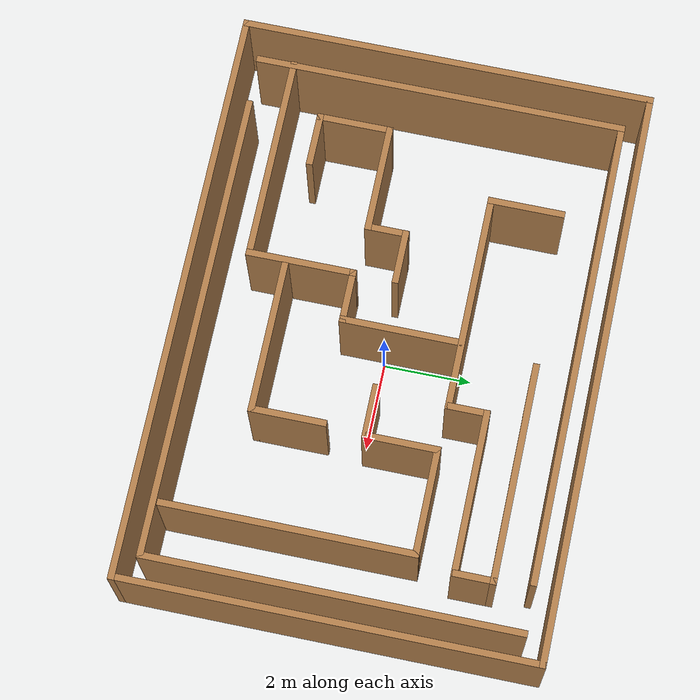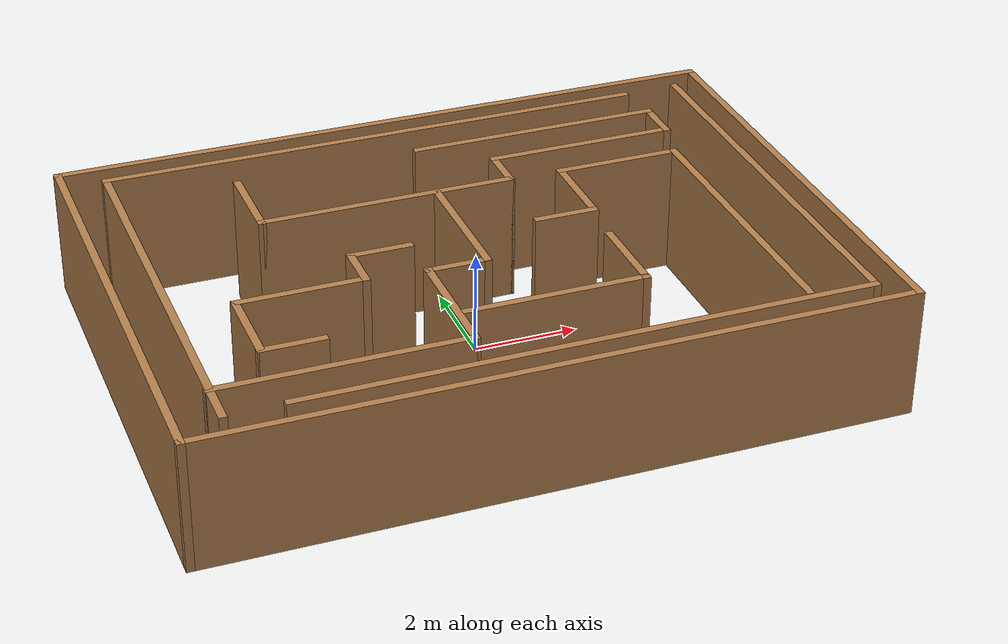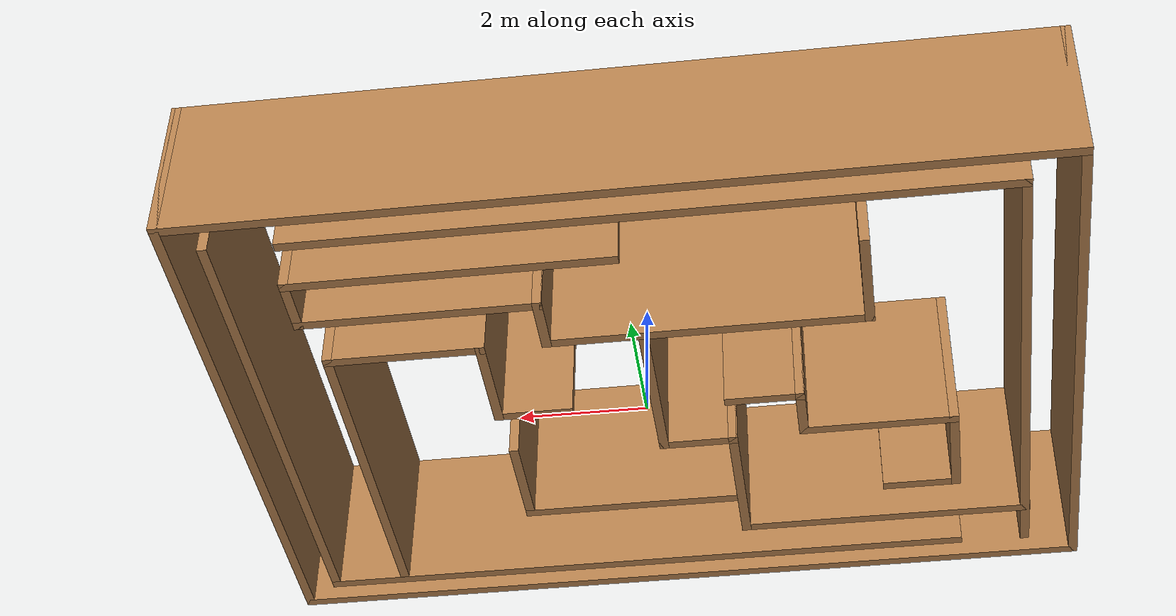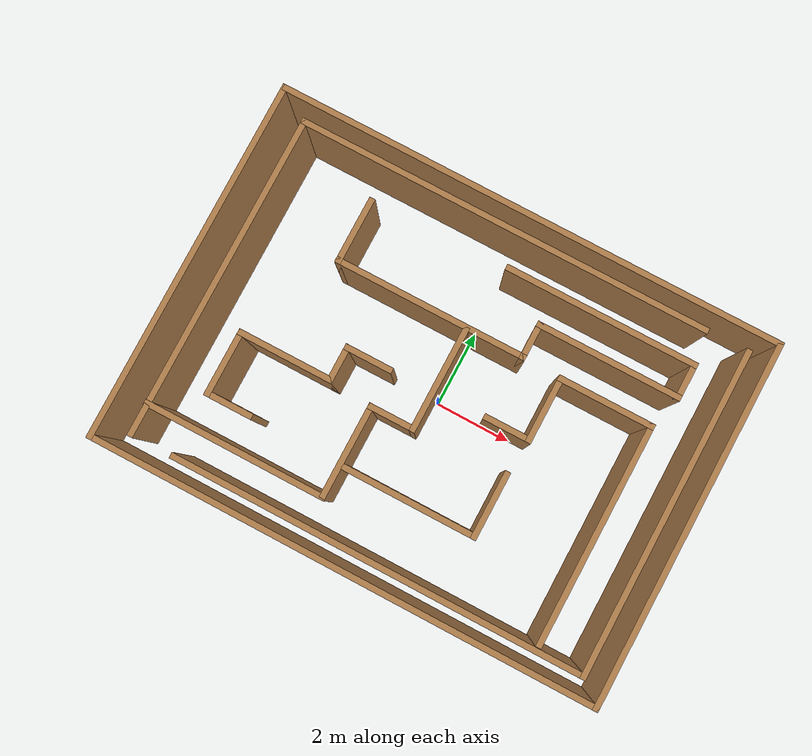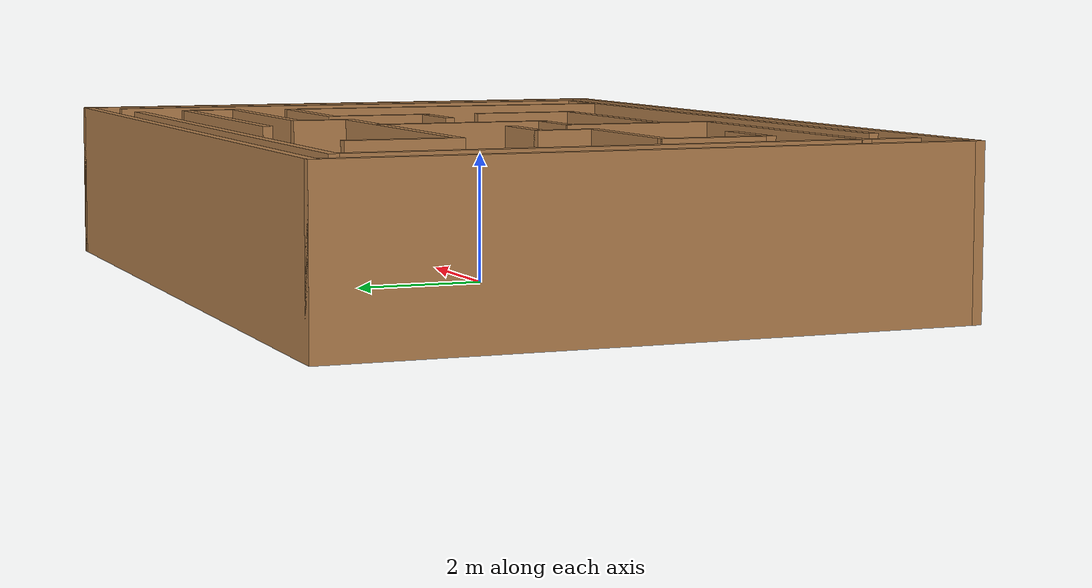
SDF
<?xml version='1.0'?>
<sdf version='1.6'>
  <model name='Untitled'>
    <pose frame=''>-0.085248 0.085816 0 0 -0 0</pose>
    <link name='Wall_0'>
      <collision name='Wall_0_Collision'>
        <geometry>
          <box>
            <size>10.75 0.15 2.5</size>
          </box>
        </geometry>
        <pose frame=''>0 0 1.25 0 -0 0</pose>
      </collision>
      <visual name='Wall_0_Visual'>
        <pose frame=''>0 0 1.25 0 -0 0</pose>
        <geometry>
          <box>
            <size>10.75 0.15 2.5</size>
          </box>
        </geometry>
        <material>
          <script>
            <uri>file://media/materials/scripts/gazebo.material</uri>
            <name>Gazebo/Wood</name>
          </script>
          <ambient>1 1 1 1</ambient>
        </material>
        <meta>
          <layer>0</layer>
        </meta>
      </visual>
      <pose frame=''>-0.441534 4.16449 0 0 -0 3.14159</pose>
    </link>
    <link name='Wall_1'>
      <collision name='Wall_1_Collision'>
        <geometry>
          <box>
            <size>8.5 0.15 2.5</size>
          </box>
        </geometry>
        <pose frame=''>0 0 1.25 0 -0 0</pose>
      </collision>
      <visual name='Wall_1_Visual'>
        <pose frame=''>0 0 1.25 0 -0 0</pose>
        <geometry>
          <box>
            <size>8.5 0.15 2.5</size>
          </box>
        </geometry>
        <material>
          <script>
            <uri>file://media/materials/scripts/gazebo.material</uri>
            <name>Gazebo/Wood</name>
          </script>
          <ambient>1 1 1 1</ambient>
        </material>
        <meta>
          <layer>0</layer>
        </meta>
      </visual>
      <pose frame=''>-5.74153 -0.010504 0 0 -0 -1.5708</pose>
    </link>
    <link name='Wall_11'>
      <collision name='Wall_11_Collision'>
        <geometry>
          <box>
            <size>1.75 0.15 2.5</size>
          </box>
        </geometry>
        <pose frame=''>0 0 1.25 0 -0 0</pose>
      </collision>
      <visual name='Wall_11_Visual'>
        <pose frame=''>0 0 1.25 0 -0 0</pose>
        <geometry>
          <box>
            <size>1.75 0.15 2.5</size>
          </box>
        </geometry>
        <material>
          <script>
            <uri>file://media/materials/scripts/gazebo.material</uri>
            <name>Gazebo/Wood</name>
          </script>
          <ambient>1 1 1 1</ambient>
        </material>
        <meta>
          <layer>0</layer>
        </meta>
      </visual>
      <pose frame=''>-3.44542 2.41614 0 0 -0 -1.5708</pose>
    </link>
    <link name='Wall_14'>
      <collision name='Wall_14_Collision'>
        <geometry>
          <box>
            <size>5 0.15 2.5</size>
          </box>
        </geometry>
        <pose frame=''>0 0 1.25 0 -0 0</pose>
      </collision>
      <visual name='Wall_14_Visual'>
        <pose frame=''>0 0 1.25 0 -0 0</pose>
        <geometry>
          <box>
            <size>5 0.15 2.5</size>
          </box>
        </geometry>
        <material>
          <script>
            <uri>file://media/materials/scripts/gazebo.material</uri>
            <name>Gazebo/Wood</name>
          </script>
          <ambient>1 1 1 1</ambient>
        </material>
        <meta>
          <layer>0</layer>
        </meta>
      </visual>
      <pose frame=''>-1.02042 1.61614 0 0 -0 0</pose>
    </link>
    <link name='Wall_15'>
      <collision name='Wall_15_Collision'>
        <geometry>
          <box>
            <size>1 0.15 2.5</size>
          </box>
        </geometry>
        <pose frame=''>0 0 1.25 0 -0 0</pose>
      </collision>
      <visual name='Wall_15_Visual'>
        <pose frame=''>0 0 1.25 0 -0 0</pose>
        <geometry>
          <box>
            <size>1 0.15 2.5</size>
          </box>
        </geometry>
        <material>
          <script>
            <uri>file://media/materials/scripts/gazebo.material</uri>
            <name>Gazebo/Wood</name>
          </script>
          <ambient>1 1 1 1</ambient>
        </material>
        <meta>
          <layer>0</layer>
        </meta>
      </visual>
      <pose frame=''>1.40458 2.04114 0 0 -0 1.5708</pose>
    </link>
    <link name='Wall_16'>
      <collision name='Wall_16_Collision'>
        <geometry>
          <box>
            <size>3.75 0.15 2.5</size>
          </box>
        </geometry>
        <pose frame=''>0 0 1.25 0 -0 0</pose>
      </collision>
      <visual name='Wall_16_Visual'>
        <pose frame=''>0 0 1.25 0 -0 0</pose>
        <geometry>
          <box>
            <size>3.75 0.15 2.5</size>
          </box>
        </geometry>
        <material>
          <script>
            <uri>file://media/materials/scripts/gazebo.material</uri>
            <name>Gazebo/Wood</name>
          </script>
          <ambient>1 1 1 1</ambient>
        </material>
        <meta>
          <layer>0</layer>
        </meta>
      </visual>
      <pose frame=''>3.20458 2.46614 0 0 -0 0</pose>
    </link>
    <link name='Wall_17'>
      <collision name='Wall_17_Collision'>
        <geometry>
          <box>
            <size>1 0.15 2.5</size>
          </box>
        </geometry>
        <pose frame=''>0 0 1.25 0 -0 0</pose>
      </collision>
      <visual name='Wall_17_Visual'>
        <pose frame=''>0 0 1.25 0 -0 0</pose>
        <geometry>
          <box>
            <size>1 0.15 2.5</size>
          </box>
        </geometry>
        <material>
          <script>
            <uri>file://media/materials/scripts/gazebo.material</uri>
            <name>Gazebo/Wood</name>
          </script>
          <ambient>1 1 1 1</ambient>
        </material>
        <meta>
          <layer>0</layer>
        </meta>
      </visual>
      <pose frame=''>5.00458 2.89114 0 0 -0 1.5708</pose>
    </link>
    <link name='Wall_18'>
      <collision name='Wall_18_Collision'>
        <geometry>
          <box>
            <size>5 0.15 2.5</size>
          </box>
        </geometry>
        <pose frame=''>0 0 1.25 0 -0 0</pose>
      </collision>
      <visual name='Wall_18_Visual'>
        <pose frame=''>0 0 1.25 0 -0 0</pose>
        <geometry>
          <box>
            <size>5 0.15 2.5</size>
          </box>
        </geometry>
        <material>
          <script>
            <uri>file://media/materials/scripts/gazebo.material</uri>
            <name>Gazebo/Wood</name>
          </script>
          <ambient>1 1 1 1</ambient>
        </material>
        <meta>
          <layer>0</layer>
        </meta>
      </visual>
      <pose frame=''>2.57958 3.31614 0 0 -0 3.14159</pose>
    </link>
    <link name='Wall_20'>
      <collision name='Wall_20_Collision'>
        <geometry>
          <box>
            <size>1.25 0.15 2.5</size>
          </box>
        </geometry>
        <pose frame=''>0 0 1.25 0 -0 0</pose>
      </collision>
      <visual name='Wall_20_Visual'>
        <pose frame=''>0 0 1.25 0 -0 0</pose>
        <geometry>
          <box>
            <size>1.25 0.15 2.5</size>
          </box>
        </geometry>
        <material>
          <script>
            <uri>file://media/materials/scripts/gazebo.material</uri>
            <name>Gazebo/Wood</name>
          </script>
          <ambient>1 1 1 1</ambient>
        </material>
        <meta>
          <layer>0</layer>
        </meta>
      </visual>
      <pose frame=''>1.86948 -0.022144 0 0 -0 0</pose>
    </link>
    <link name='Wall_21'>
      <collision name='Wall_21_Collision'>
        <geometry>
          <box>
            <size>1.75 0.15 2.5</size>
          </box>
        </geometry>
        <pose frame=''>0 0 1.25 0 -0 0</pose>
      </collision>
      <visual name='Wall_21_Visual'>
        <pose frame=''>0 0 1.25 0 -0 0</pose>
        <geometry>
          <box>
            <size>1.75 0.15 2.5</size>
          </box>
        </geometry>
        <material>
          <script>
            <uri>file://media/materials/scripts/gazebo.material</uri>
            <name>Gazebo/Wood</name>
          </script>
          <ambient>1 1 1 1</ambient>
        </material>
        <meta>
          <layer>0</layer>
        </meta>
      </visual>
      <pose frame=''>2.41948 0.777856 0 0 -0 1.5708</pose>
    </link>
    <link name='Wall_22'>
      <collision name='Wall_22_Collision'>
        <geometry>
          <box>
            <size>2.5 0.15 2.5</size>
          </box>
        </geometry>
        <pose frame=''>0 0 1.25 0 -0 0</pose>
      </collision>
      <visual name='Wall_22_Visual'>
        <pose frame=''>0 0 1.25 0 -0 0</pose>
        <geometry>
          <box>
            <size>2.5 0.15 2.5</size>
          </box>
        </geometry>
        <material>
          <script>
            <uri>file://media/materials/scripts/gazebo.material</uri>
            <name>Gazebo/Wood</name>
          </script>
          <ambient>1 1 1 1</ambient>
        </material>
        <meta>
          <layer>0</layer>
        </meta>
      </visual>
      <pose frame=''>3.59448 1.57786 0 0 -0 0</pose>
    </link>
    <link name='Wall_23'>
      <collision name='Wall_23_Collision'>
        <geometry>
          <box>
            <size>5.75 0.15 2.5</size>
          </box>
        </geometry>
        <pose frame=''>0 0 1.25 0 -0 0</pose>
      </collision>
      <visual name='Wall_23_Visual'>
        <pose frame=''>0 0 1.25 0 -0 0</pose>
        <geometry>
          <box>
            <size>5.75 0.15 2.5</size>
          </box>
        </geometry>
        <material>
          <script>
            <uri>file://media/materials/scripts/gazebo.material</uri>
            <name>Gazebo/Wood</name>
          </script>
          <ambient>1 1 1 1</ambient>
        </material>
        <meta>
          <layer>0</layer>
        </meta>
      </visual>
      <pose frame=''>4.76948 -1.22214 0 0 -0 -1.5708</pose>
    </link>
    <link name='Wall_25'>
      <collision name='Wall_25_Collision'>
        <geometry>
          <box>
            <size>3.5 0.15 2.5</size>
          </box>
        </geometry>
        <pose frame=''>0 0 1.25 0 -0 0</pose>
      </collision>
      <visual name='Wall_25_Visual'>
        <pose frame=''>0 0 1.25 0 -0 0</pose>
        <geometry>
          <box>
            <size>3.5 0.15 2.5</size>
          </box>
        </geometry>
        <material>
          <script>
            <uri>file://media/materials/scripts/gazebo.material</uri>
            <name>Gazebo/Wood</name>
          </script>
          <ambient>1 1 1 1</ambient>
        </material>
        <meta>
          <layer>0</layer>
        </meta>
      </visual>
      <pose frame=''>0.658292 -2.56651 0 0 -0 0</pose>
    </link>
    <link name='Wall_26'>
      <collision name='Wall_26_Collision'>
        <geometry>
          <box>
            <size>1.75 0.15 2.5</size>
          </box>
        </geometry>
        <pose frame=''>0 0 1.25 0 -0 0</pose>
      </collision>
      <visual name='Wall_26_Visual'>
        <pose frame=''>0 0 1.25 0 -0 0</pose>
        <geometry>
          <box>
            <size>1.75 0.15 2.5</size>
          </box>
        </geometry>
        <material>
          <script>
            <uri>file://media/materials/scripts/gazebo.material</uri>
            <name>Gazebo/Wood</name>
          </script>
          <ambient>1 1 1 1</ambient>
        </material>
        <meta>
          <layer>0</layer>
        </meta>
      </visual>
      <pose frame=''>2.33329 -1.76651 0 0 -0 1.5708</pose>
    </link>
    <link name='Wall_28'>
      <collision name='Wall_28_Collision'>
        <geometry>
          <box>
            <size>1.25 0.15 2.5</size>
          </box>
        </geometry>
        <pose frame=''>0 0 1.25 0 -0 0</pose>
      </collision>
      <visual name='Wall_28_Visual'>
        <pose frame=''>0 0 1.25 0 -0 0</pose>
        <geometry>
          <box>
            <size>1.25 0.15 2.5</size>
          </box>
        </geometry>
        <material>
          <script>
            <uri>file://media/materials/scripts/gazebo.material</uri>
            <name>Gazebo/Wood</name>
          </script>
          <ambient>1 1 1 1</ambient>
        </material>
        <meta>
          <layer>0</layer>
        </meta>
      </visual>
      <pose frame=''>-4.08795 -2.54338 0 0 -0 3.14159</pose>
    </link>
    <link name='Wall_29'>
      <collision name='Wall_29_Collision'>
        <geometry>
          <box>
            <size>1.75 0.15 2.5</size>
          </box>
        </geometry>
        <pose frame=''>0 0 1.25 0 -0 0</pose>
      </collision>
      <visual name='Wall_29_Visual'>
        <pose frame=''>0 0 1.25 0 -0 0</pose>
        <geometry>
          <box>
            <size>1.75 0.15 2.5</size>
          </box>
        </geometry>
        <material>
          <script>
            <uri>file://media/materials/scripts/gazebo.material</uri>
            <name>Gazebo/Wood</name>
          </script>
          <ambient>1 1 1 1</ambient>
        </material>
        <meta>
          <layer>0</layer>
        </meta>
      </visual>
      <pose frame=''>-4.63794 -1.74338 0 0 -0 1.5708</pose>
    </link>
    <link name='Wall_3'>
      <collision name='Wall_3_Collision'>
        <geometry>
          <box>
            <size>10.75 0.15 2.5</size>
          </box>
        </geometry>
        <pose frame=''>0 0 1.25 0 -0 0</pose>
      </collision>
      <visual name='Wall_3_Visual'>
        <pose frame=''>0 0 1.25 0 -0 0</pose>
        <geometry>
          <box>
            <size>10.75 0.15 2.5</size>
          </box>
        </geometry>
        <material>
          <script>
            <uri>file://media/materials/scripts/gazebo.material</uri>
            <name>Gazebo/Wood</name>
          </script>
          <ambient>1 1 1 1</ambient>
        </material>
        <meta>
          <layer>0</layer>
        </meta>
      </visual>
      <pose frame=''>0.674917 -4.18565 0 0 -0 0</pose>
    </link>
    <link name='Wall_30'>
      <collision name='Wall_30_Collision'>
        <geometry>
          <box>
            <size>2.5 0.15 2.5</size>
          </box>
        </geometry>
        <pose frame=''>0 0 1.25 0 -0 0</pose>
      </collision>
      <visual name='Wall_30_Visual'>
        <pose frame=''>0 0 1.25 0 -0 0</pose>
        <geometry>
          <box>
            <size>2.5 0.15 2.5</size>
          </box>
        </geometry>
        <material>
          <script>
            <uri>file://media/materials/scripts/gazebo.material</uri>
            <name>Gazebo/Wood</name>
          </script>
          <ambient>1 1 1 1</ambient>
        </material>
        <meta>
          <layer>0</layer>
        </meta>
      </visual>
      <pose frame=''>-3.46294 -0.943381 0 0 -0 0</pose>
    </link>
    <link name='Wall_31'>
      <collision name='Wall_31_Collision'>
        <geometry>
          <box>
            <size>1 0.15 2.5</size>
          </box>
        </geometry>
        <pose frame=''>0 0 1.25 0 -0 0</pose>
      </collision>
      <visual name='Wall_31_Visual'>
        <pose frame=''>0 0 1.25 0 -0 0</pose>
        <geometry>
          <box>
            <size>1 0.15 2.5</size>
          </box>
        </geometry>
        <material>
          <script>
            <uri>file://media/materials/scripts/gazebo.material</uri>
            <name>Gazebo/Wood</name>
          </script>
          <ambient>1 1 1 1</ambient>
        </material>
        <meta>
          <layer>0</layer>
        </meta>
      </visual>
      <pose frame=''>-2.28794 -0.518381 0 0 -0 1.5708</pose>
    </link>
    <link name='Wall_32'>
      <collision name='Wall_32_Collision'>
        <geometry>
          <box>
            <size>1.25 0.15 2.5</size>
          </box>
        </geometry>
        <pose frame=''>0 0 1.25 0 -0 0</pose>
      </collision>
      <visual name='Wall_32_Visual'>
        <pose frame=''>0 0 1.25 0 -0 0</pose>
        <geometry>
          <box>
            <size>1.25 0.15 2.5</size>
          </box>
        </geometry>
        <material>
          <script>
            <uri>file://media/materials/scripts/gazebo.material</uri>
            <name>Gazebo/Wood</name>
          </script>
          <ambient>1 1 1 1</ambient>
        </material>
        <meta>
          <layer>0</layer>
        </meta>
      </visual>
      <pose frame=''>-1.73794 -0.093381 0 0 -0 0</pose>
    </link>
    <link name='Wall_34'>
      <collision name='Wall_34_Collision'>
        <geometry>
          <box>
            <size>13.25 0.15 2.5</size>
          </box>
        </geometry>
        <pose frame=''>0 0 1.25 0 -0 0</pose>
      </collision>
      <visual name='Wall_34_Visual'>
        <pose frame=''>0 0 1.25 0 -0 0</pose>
        <geometry>
          <box>
            <size>13.25 0.15 2.5</size>
          </box>
        </geometry>
        <material>
          <script>
            <uri>file://media/materials/scripts/gazebo.material</uri>
            <name>Gazebo/Wood</name>
          </script>
          <ambient>1 1 1 1</ambient>
        </material>
        <meta>
          <layer>0</layer>
        </meta>
      </visual>
      <pose frame=''>-0 4.675 0 0 -0 0</pose>
    </link>
    <link name='Wall_35'>
      <collision name='Wall_35_Collision'>
        <geometry>
          <box>
            <size>9.5 0.15 2.5</size>
          </box>
        </geometry>
        <pose frame=''>0 0 1.25 0 -0 0</pose>
      </collision>
      <visual name='Wall_35_Visual'>
        <pose frame=''>0 0 1.25 0 -0 0</pose>
        <geometry>
          <box>
            <size>9.5 0.15 2.5</size>
          </box>
        </geometry>
        <material>
          <script>
            <uri>file://media/materials/scripts/gazebo.material</uri>
            <name>Gazebo/Wood</name>
          </script>
          <ambient>1 1 1 1</ambient>
        </material>
        <meta>
          <layer>0</layer>
        </meta>
      </visual>
      <pose frame=''>6.55 0 0 0 -0 -1.5708</pose>
    </link>
    <link name='Wall_36'>
      <collision name='Wall_36_Collision'>
        <geometry>
          <box>
            <size>13.25 0.15 2.5</size>
          </box>
        </geometry>
        <pose frame=''>0 0 1.25 0 -0 0</pose>
      </collision>
      <visual name='Wall_36_Visual'>
        <pose frame=''>0 0 1.25 0 -0 0</pose>
        <geometry>
          <box>
            <size>13.25 0.15 2.5</size>
          </box>
        </geometry>
        <material>
          <script>
            <uri>file://media/materials/scripts/gazebo.material</uri>
            <name>Gazebo/Wood</name>
          </script>
          <ambient>1 1 1 1</ambient>
        </material>
        <meta>
          <layer>0</layer>
        </meta>
      </visual>
      <pose frame=''>-0 -4.675 0 0 -0 3.14159</pose>
    </link>
    <link name='Wall_37'>
      <collision name='Wall_37_Collision'>
        <geometry>
          <box>
            <size>9.5 0.15 2.5</size>
          </box>
        </geometry>
        <pose frame=''>0 0 1.25 0 -0 0</pose>
      </collision>
      <visual name='Wall_37_Visual'>
        <pose frame=''>0 0 1.25 0 -0 0</pose>
        <geometry>
          <box>
            <size>9.5 0.15 2.5</size>
          </box>
        </geometry>
        <material>
          <script>
            <uri>file://media/materials/scripts/gazebo.material</uri>
            <name>Gazebo/Wood</name>
          </script>
          <ambient>1 1 1 1</ambient>
        </material>
        <meta>
          <layer>0</layer>
        </meta>
      </visual>
      <pose frame=''>-6.55 0 0 0 -0 1.5708</pose>
    </link>
    <link name='Wall_4'>
      <collision name='Wall_4_Collision'>
        <geometry>
          <box>
            <size>8.5 0.15 2.5</size>
          </box>
        </geometry>
        <pose frame=''>0 0 1.25 0 -0 0</pose>
      </collision>
      <visual name='Wall_4_Visual'>
        <pose frame=''>0 0 1.25 0 -0 0</pose>
        <geometry>
          <box>
            <size>8.5 0.15 2.5</size>
          </box>
        </geometry>
        <material>
          <script>
            <uri>file://media/materials/scripts/gazebo.material</uri>
            <name>Gazebo/Wood</name>
          </script>
          <ambient>1 1 1 1</ambient>
        </material>
        <meta>
          <layer>0</layer>
        </meta>
      </visual>
      <pose frame=''>5.97492 -0.010654 0 0 -0 1.5708</pose>
    </link>
    <link name='Wall_6'>
      <collision name='Wall_6_Collision'>
        <geometry>
          <box>
            <size>4.75 0.15 2.5</size>
          </box>
        </geometry>
        <pose frame=''>0 0 1.25 0 -0 0</pose>
      </collision>
      <visual name='Wall_6_Visual'>
        <pose frame=''>0 0 1.25 0 -0 0</pose>
        <geometry>
          <box>
            <size>4.75 0.15 2.5</size>
          </box>
        </geometry>
        <material>
          <script>
            <uri>file://media/materials/scripts/gazebo.material</uri>
            <name>Gazebo/Wood</name>
          </script>
          <ambient>1 1 1 1</ambient>
        </material>
        <meta>
          <layer>0</layer>
        </meta>
      </visual>
      <pose frame=''>-3.45848 -3.39921 0 0 -0 0</pose>
    </link>
    <link name='Wall_7'>
      <collision name='Wall_7_Collision'>
        <geometry>
          <box>
            <size>2.5 0.15 2.5</size>
          </box>
        </geometry>
        <pose frame=''>0 0 1.25 0 -0 0</pose>
      </collision>
      <visual name='Wall_7_Visual'>
        <pose frame=''>0 0 1.25 0 -0 0</pose>
        <geometry>
          <box>
            <size>2.5 0.15 2.5</size>
          </box>
        </geometry>
        <material>
          <script>
            <uri>file://media/materials/scripts/gazebo.material</uri>
            <name>Gazebo/Wood</name>
          </script>
          <ambient>1 1 1 1</ambient>
        </material>
        <meta>
          <layer>0</layer>
        </meta>
      </visual>
      <pose frame=''>-1.15848 -2.22421 0 0 -0 1.5708</pose>
    </link>
    <link name='Wall_8'>
      <collision name='Wall_8_Collision'>
        <geometry>
          <box>
            <size>1.25 0.15 2.5</size>
          </box>
        </geometry>
        <pose frame=''>0 0 1.25 0 -0 0</pose>
      </collision>
      <visual name='Wall_8_Visual'>
        <pose frame=''>0 0 1.25 0 -0 0</pose>
        <geometry>
          <box>
            <size>1.25 0.15 2.5</size>
          </box>
        </geometry>
        <material>
          <script>
            <uri>file://media/materials/scripts/gazebo.material</uri>
            <name>Gazebo/Wood</name>
          </script>
          <ambient>1 1 1 1</ambient>
        </material>
        <meta>
          <layer>0</layer>
        </meta>
      </visual>
      <pose frame=''>-0.608483 -1.04921 0 0 -0 0</pose>
    </link>
    <link name='Wall_9'>
      <collision name='Wall_9_Collision'>
        <geometry>
          <box>
            <size>2.75 0.15 2.5</size>
          </box>
        </geometry>
        <pose frame=''>0 0 1.25 0 -0 0</pose>
      </collision>
      <visual name='Wall_9_Visual'>
        <pose frame=''>0 0 1.25 0 -0 0</pose>
        <geometry>
          <box>
            <size>2.75 0.15 2.5</size>
          </box>
        </geometry>
        <material>
          <script>
            <uri>file://media/materials/scripts/gazebo.material</uri>
            <name>Gazebo/Wood</name>
          </script>
          <ambient>1 1 1 1</ambient>
        </material>
        <meta>
          <layer>0</layer>
        </meta>
      </visual>
      <pose frame=''>-0.058483 0.250787 0 0 -0 1.5708</pose>
    </link>
    <static>1</static>
  </model>
</sdf>
